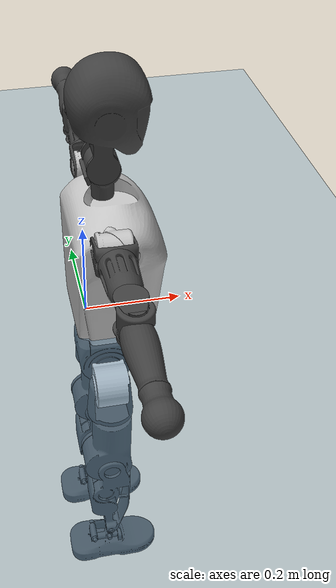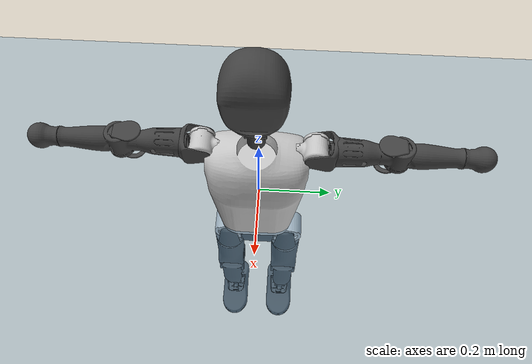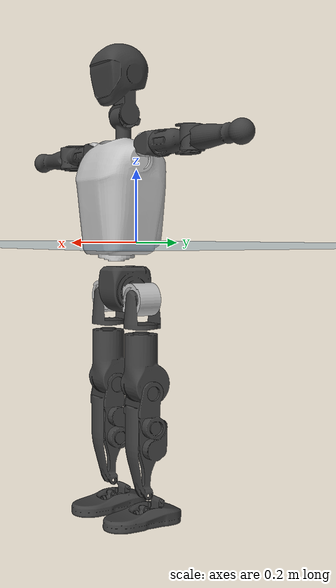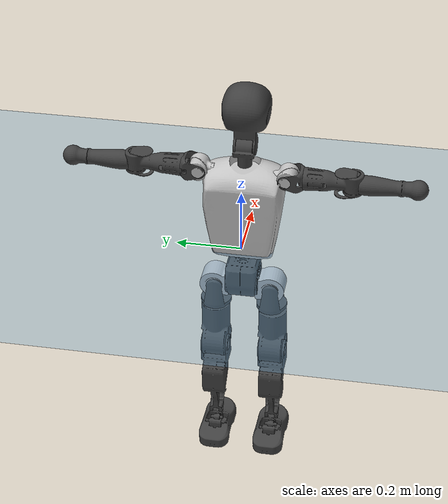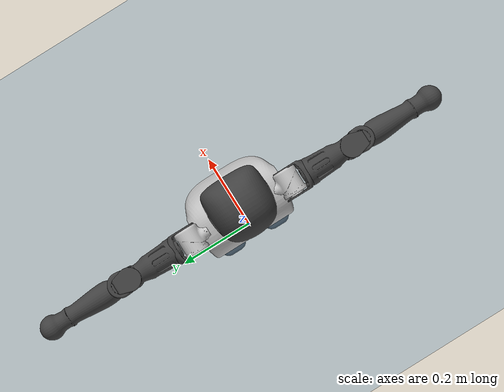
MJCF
<mujoco model="T1">
  <compiler angle="radian" assetdir="assets" balanceinertia="true" inertiafromgeom="false"/>

  <option timestep="0.005" density="1.2" viscosity="2e-05"/>

  <size nkey="1"/>

  <visual>
    <quality shadowsize="8192"/>
    <map shadowclip="0.5"/>
  </visual>

  <default>
    <default class="/">
      <joint armature="0.01" damping="0.01" frictionloss="0.1"/>
      <geom contype="0" conaffinity="0" group="1" solref="-1000 -80"/>
      <site size="0.01 0.005 0.005" group="5"/>
      <general forcelimited="true" biastype="affine" gainprm="25" biasprm="0 -25 -0.6"/>
      <default class="t1">
        <geom rgba="0.25 0.25 0.25 1"/>
        <default class="visual">
          <geom type="mesh" group="2"/>
        </default>
        <default class="collision">
          <geom group="3"/>
        </default>
        <default class="foot">
          <geom size="0.1115 0.05 0.015" type="box" condim="6" group="4" priority="1" solimp="0.015 1 0.015"/>
        </default>
        <default class="reward_collision_sphere">
          <geom group="5" rgba="1 0 0 1"/>
        </default>
      </default>
    </default>
  </default>

  <asset>
    <texture type="skybox" colorspace="auto" name="//unnamed_texture_0" builtin="gradient" rgb1="0.95 0.95 0.95" rgb2="0.95 0.95 0.95" width="100" height="600"/>
    <texture type="2d" colorspace="auto" name="texplane" builtin="checker" rgb1="0.345 0.575 0.748" rgb2="0.345 0.575 0.748" markrgb="1 1 1" width="512" height="512"/>
    <material name="MatPlane" class="/" texture="texplane" texuniform="true" texrepeat="2 2" specular="0.9"/>
    <mesh name="Trunk" class="/" file="Trunk.stl"/>
    <mesh name="H1" class="/" file="H1.stl"/>
    <mesh name="H2" class="/" file="H2.stl"/>
    <mesh name="AL1" class="/" file="AL1.stl"/>
    <mesh name="AL2" class="/" file="AL2.stl"/>
    <mesh name="AL3" class="/" file="AL3.stl"/>
    <mesh name="left_hand_link" class="/" file="left_hand_link.stl"/>
    <mesh name="AR1" class="/" file="AR1.stl"/>
    <mesh name="AR2" class="/" file="AR2.stl"/>
    <mesh name="AR3" class="/" file="AR3.stl"/>
    <mesh name="right_hand_link" class="/" file="right_hand_link.stl"/>
    <mesh name="Waist" class="/" file="Waist.stl"/>
    <mesh name="Hip_Pitch_Left" class="/" file="Hip_Pitch_Left.stl"/>
    <mesh name="Hip_Roll_Left" class="/" file="Hip_Roll_Left.stl"/>
    <mesh name="Hip_Yaw_Left" class="/" file="Hip_Yaw_Left.stl"/>
    <mesh name="Shank_Left" class="/" file="Shank_Left.stl"/>
    <mesh name="Ankle_Cross_Left" class="/" file="Ankle_Cross_Left.stl"/>
    <mesh name="left_foot_link" class="/" file="left_foot_link.stl"/>
    <mesh name="Hip_Pitch_Right" class="/" file="Hip_Pitch_Right.stl"/>
    <mesh name="Hip_Roll_Right" class="/" file="Hip_Roll_Right.stl"/>
    <mesh name="Hip_Yaw_Right" class="/" file="Hip_Yaw_Right.stl"/>
    <mesh name="Shank_Right" class="/" file="Shank_Right.stl"/>
    <mesh name="Ankle_Cross_Right" class="/" file="Ankle_Cross_Right.stl"/>
    <mesh name="right_foot_link" class="/" file="right_foot_link.stl"/>
  </asset>

  <worldbody>
    <geom name="floor" class="/" size="100 100 0.125" type="plane" group="0" material="MatPlane"/>
    <light name="toplight_shadow" class="/" pos="0 0 5" dir="0.0990148 0.0990148 -0.990148" type="directional" ambient="0.04 0.04 0.04" diffuse="0.55 0.55 0.55" specular="0.12 0.12 0.12"/>
    <light name="toplight_fill" class="/" pos="0 0 5" dir="0.0990148 0.0990148 -0.990148" type="directional" castshadow="false" ambient="0.04 0.04 0.04" diffuse="0.3 0.3 0.3" specular="0.08 0.08 0.08"/>
    <body name="trunk" childclass="t1" pos="-0.000198374 -0.00135858 0.00136248" quat="0.999999 -0.00125738 0.00040664 -0.000240248">
      <inertial pos="0.0329418 -0.00123646 0.123037" quat="0.999943 0.000400571 -0.010588 0.000921105" mass="7.52175" diaginertia="0.00987462 0.0284323 0.11479"/>
      <joint name="//unnamed_joint_0" type="free" armature="0" damping="0" frictionloss="0"/>
      <geom name="//unnamed_geom_1" class="visual" rgba="0.76 0.76 0.76 1" mesh="Trunk"/>
      <geom name="//unnamed_geom_2" class="collision" size="0.0651557 0.0868743 0.130311" pos="0.0382464 0 0.137535" type="box"/>
      <geom name="//unnamed_geom_3" class="reward_collision_sphere" size="0.0999054" pos="0.0382464 0 0.114612"/>
      <geom name="//unnamed_geom_4" class="reward_collision_sphere" size="0.0130311" pos="0.0382464 0.0699264 0"/>
      <geom name="//unnamed_geom_5" class="reward_collision_sphere" size="0.0130311" pos="0.0382464 -0.0699264 0"/>
      <geom name="//unnamed_geom_6" class="reward_collision_sphere" size="0.0130311" pos="0.0382464 0.088025 0.206302"/>
      <geom name="//unnamed_geom_7" class="reward_collision_sphere" size="0.0130311" pos="0.0382464 -0.088025 0.206302"/>
      <site name="imu" pos="0.00845997 -0.0101281 0.00750405" size="0.00868743"/>
      <camera name="track" pos="0 -1.64533 0" quat="0.707107 0.707107 0 0" mode="trackcom"/>
      <camera name="ego_camera" pos="0.0777677 0 0.481372" quat="-0.5 -0.5 0.5 0.5"/>
      <body name="H1" pos="0.0390239 -0.00243379 0.275726" quat="1 0.000395442 0.000538503 3.37748e-05">
        <inertial pos="-0.00112643 -0.0009073 0.0684547" quat="0.76818 -0.015277 -0.00184086 0.640049" mass="0.280105" diaginertia="2.51021e-05 8.64796e-05 0.000296"/>
        <joint name="AAHead_yaw" pos="0 0 0" axis="-0.00804004 -0.00466168 0.999957" range="-1.53654 1.58921" armature="0.00788014" damping="0.0102235" frictionloss="0.0830202"/>
        <geom name="//unnamed_geom_8" class="visual" mesh="H1"/>
        <body name="H2" pos="-0.00322437 -0.00191733 0.0715971" quat="0.999999 0.000666878 -0.000220967 -0.000910918">
          <inertial pos="0.00559862 0.00162414 0.113111" quat="0.98854 0.0993 -0.0804483 -0.0803469" mass="0.398075" diaginertia="0.000210723 0.000723367 0.00347321"/>
          <joint name="Head_pitch" pos="0 0 0" axis="-0.00541776 -0.999984 0.00137934" stiffness="0.001546" range="-1.26064 0.312985" armature="0.00999086" damping="0" frictionloss="0.0817999"/>
          <geom name="//unnamed_geom_9" class="visual" mesh="H2"/>
          <geom name="//unnamed_geom_10" class="collision" size="0.0694994" pos="0.0063744 0 0.126074"/>
          <geom name="//unnamed_geom_11" class="reward_collision_sphere" size="0.0781868" pos="0.0127488 0 0.114612"/>
        </body>
      </body>
      <body name="AL1" pos="0.0407868 0.0892332 0.253988" quat="1 0.000144886 0.000240222 -0.000260266">
        <inertial pos="-0.000322777 0.0369324 0.000280387" quat="0.507874 0.495694 -0.507298 0.488877" mass="0.346831" diaginertia="0.000146583 0.000469402 0.000557735"/>
        <joint name="Left_Shoulder_Pitch" pos="0 0 0" axis="0.000684563 0.99999 -0.00432213" range="-3.25337 1.20702" armature="0.00761478" damping="0.00568316" frictionloss="0.0796797"/>
        <geom name="//unnamed_geom_12" class="visual" rgba="0.76 0.76 0.76 1" mesh="AL1"/>
        <body name="AL2" pos="-0.000584901 0.0419975 0.000362479" quat="1 -1.04789e-07 -1.53668e-07 2.11996e-07">
          <inertial pos="0.00341058 0.028776 -0.000729927" quat="0.488755 0.510807 -0.487449 0.512434" mass="0.105861" diaginertia="4.32015e-05 0.000133864 0.000365021"/>
          <joint name="Left_Shoulder_Roll" pos="0 0 0" axis="-0.999964 0.00772703 -0.00362261" stiffness="0.00486347" range="-1.60171 1.71106" armature="0.00935072" damping="0" frictionloss="0.0887792"/>
          <geom name="//unnamed_geom_13" class="visual" mesh="AL2"/>
          <body name="AL3" pos="0.00158775 0.0492318 0.00106091" quat="1 5.29048e-05 0.000474994 0.000311164">
            <inertial pos="0.00122683 0.0700833 -0.00062903" quat="0.699099 0.715 -0.00201462 0.00551105" mass="0.635122" diaginertia="0.00129159 0.00474989 0.0012219"/>
            <joint name="Left_Elbow_Pitch" pos="0 0 0" axis="0.0129696 -0.999916 -0.000170477" stiffness="0.0155651" range="-2.30595 2.27471" armature="0.00994034" damping="0.0305775" frictionloss="0.0823803"/>
            <geom name="//unnamed_geom_14" class="visual" mesh="AL3"/>
            <geom name="//unnamed_geom_15" class="collision" size="0.0260623 0.0651557" pos="0 0.0411332 0" quat="0.707105 0.707108 0 0" type="cylinder"/>
            <geom name="//unnamed_geom_16" class="reward_collision_sphere" size="0.0312747"/>
            <body name="left_hand_link" pos="-0.000406734 0.121848 -0.00128369" quat="0.999999 -0.00121007 0.000205684 -0.000149906">
              <inertial pos="-0.000202303 0.0919473 0.00273885" quat="0.707533 0.706679 -0.000929448 -0.000786971" mass="0.218248" diaginertia="0.000859493 0.00308925 0.000439341"/>
              <joint name="Left_Elbow_Yaw" pos="0 0 0" axis="0.00546643 -0.00267842 0.999981" range="-2.49138 0.00276466" armature="0.00795387" damping="0.0116695" frictionloss="0.0784001"/>
              <geom name="//unnamed_geom_17" class="visual" mesh="left_hand_link"/>
              <geom name="//unnamed_geom_18" class="collision" size="0.0260623 0.076015" pos="0 0.106946 0" quat="0.707105 0.707108 0 0" type="cylinder"/>
              <geom name="//unnamed_geom_19" class="reward_collision_sphere" size="0.0434371"/>
              <geom name="//unnamed_geom_20" class="reward_collision_sphere" size="0.030406" pos="0 0.090493 0"/>
              <geom name="//unnamed_geom_21" class="reward_collision_sphere" size="0.030406" pos="0 0.176873 0"/>
            </body>
          </body>
        </body>
      </body>
      <body name="AR1" pos="0.0365848 -0.084668 0.249576" quat="1 -0.000484207 0.000536764 -1.26132e-05">
        <inertial pos="0.000782761 -0.0345091 0.000952509" quat="0.494673 0.500146 -0.511875 0.493089" mass="0.355056" diaginertia="0.000138758 0.000470251 0.000562628"/>
        <joint name="Right_Shoulder_Pitch" pos="0 0 0" axis="-0.000576654 -1 -0.000215708" range="-1.23089 3.31294" armature="0.00822224" damping="0.00735659" frictionloss="0.0821127"/>
        <geom name="//unnamed_geom_22" class="visual" rgba="0.76 0.76 0.76 1" mesh="AR1"/>
        <body name="AR2" pos="-0.00279351 -0.0406262 -0.00122026" quat="0.999999 0.00113962 -0.000290087 -0.000358206">
          <inertial pos="0.00519319 -0.029911 0.00257131" quat="0.51214 0.487365 -0.513125 0.486714" mass="0.104589" diaginertia="4.23731e-05 0.000128937 0.000358311"/>
          <joint name="Right_Shoulder_Roll" pos="0 0 0" axis="-0.999862 0.0117332 0.0117217" range="-1.69483 1.52968" armature="0.00841937" damping="0.0137915" frictionloss="0.0939906"/>
          <geom name="//unnamed_geom_23" class="visual" mesh="AR2"/>
          <body name="AR3" pos="-0.00118978 -0.0522035 0.00179521" quat="1 0.000146469 -0.000140162 9.29893e-05">
            <inertial pos="1.6471e-06 -0.0687765 0.000201145" quat="0.705582 0.708621 -0.00305007 0.000718425" mass="0.683223" diaginertia="0.00138299 0.0047315 0.00122518"/>
            <joint name="Right_Elbow_Pitch" pos="0 0 0" axis="0.000507093 0.999915 -0.013009" stiffness="0.00987575" range="-2.23487 2.25256" armature="0.0084743" damping="0.0088805" frictionloss="0.0878202"/>
            <geom name="//unnamed_geom_24" class="visual" mesh="AR3"/>
            <geom name="//unnamed_geom_25" class="collision" size="0.0260623 0.0651557" pos="0 -0.0411332 0" quat="0.707105 0.707108 0 0" type="cylinder"/>
            <geom name="//unnamed_geom_26" class="reward_collision_sphere" size="0.0312747"/>
            <body name="right_hand_link" pos="-0.00208064 -0.11996 -0.00244734" quat="0.999999 0.000484446 0.0010497 -0.000510467">
              <inertial pos="-0.00124017 -0.0921049 0.000279707" quat="0.706491 0.707715 -0.0013381 0.00293847" mass="0.209721" diaginertia="0.000894928 0.00310783 0.000424157"/>
              <joint name="Right_Elbow_Yaw" pos="0 0 0" axis="0.00934537 -0.000890958 0.999956" range="0.0290768 2.42028" armature="0.00926218" damping="0" frictionloss="0.0926512"/>
              <geom name="//unnamed_geom_27" class="visual" mesh="right_hand_link"/>
              <geom name="//unnamed_geom_28" class="collision" size="0.0260623 0.076015" pos="0 -0.106946 0" quat="0.707105 0.707108 0 0" type="cylinder"/>
              <geom name="//unnamed_geom_29" class="reward_collision_sphere" size="0.0434371"/>
              <geom name="//unnamed_geom_30" class="reward_collision_sphere" size="0.030406" pos="0 -0.090493 0"/>
              <geom name="//unnamed_geom_31" class="reward_collision_sphere" size="0.030406" pos="0 -0.176873 0"/>
            </body>
          </body>
        </body>
      </body>
      <body name="Waist" pos="0.0372458 0.00273741 -0.133254" quat="0.999999 -0.000733974 0.00127428 0.000307172">
        <inertial pos="0.00461012 0.000624622 0.00833912" quat="0.984203 0.00268453 -0.177006 0.00233143" mass="1.58192" diaginertia="0.000562275 0.00186963 0.00933216"/>
        <joint name="Waist" pos="0 0 0" axis="0.00705626 -0.00839551 0.99994" range="-1.51611 1.51803" armature="0.00763968" damping="0" frictionloss="0.0909301"/>
        <geom name="//unnamed_geom_32" class="visual" mesh="Waist"/>
        <body name="Hip_Pitch_Left" pos="0.00208705 0.0880632 0.00109176" quat="0.999999 0.000795633 0.00117993 0.000696787">
          <inertial pos="-0.00018231 -0.0078579 -0.0203371" quat="0.975383 0.219881 0.0165616 0.00261896" mass="0.707744" diaginertia="0.000193993 0.000546868 0.00248543"/>
          <joint name="Left_Hip_Pitch" pos="0 0 0" axis="0.00791465 0.99992 -0.00986436" stiffness="0.00797698" range="-1.85508 1.56267" armature="0.0084429" damping="0.00846196" frictionloss="0.0775854"/>
          <geom name="//unnamed_geom_33" class="visual" rgba="0.76 0.76 0.76 1" mesh="Hip_Pitch_Left"/>
          <body name="Hip_Roll_Left" pos="-0.00205948 -0.0024799 -0.0200076" quat="0.999998 0.000145657 -0.00165859 -0.000806008">
            <inertial pos="0.00216133 -0.00265259 -0.0600343" quat="0.70802 -0.00241304 -0.00505 0.70617" mass="0.255476" diaginertia="0.000184722 0.000592597 0.0010627"/>
            <joint name="Left_Hip_Roll" pos="0 0 0" axis="-0.999896 -0.00878697 0.0114264" stiffness="0.00345973" range="-1.57512 0.188719" armature="0.00912821" damping="0.0097449" frictionloss="0.0873981"/>
            <geom name="//unnamed_geom_34" class="visual" mesh="Hip_Roll_Left"/>
            <geom name="//unnamed_geom_35" class="reward_collision_sphere" size="0.0477808"/>
            <body name="Hip_Yaw_Left" pos="0.00291773 0.00277474 -0.0922589" quat="1 6.24244e-05 8.66805e-05 -0.000367555">
              <inertial pos="-0.00375185 -0.00333838 -0.103685" quat="0.703386 -0.0265545 -0.0370935 0.709343" mass="1.38027" diaginertia="0.00261951 0.00922269 0.00508139"/>
              <joint name="Left_Hip_Yaw" pos="0 0 0" axis="-0.010596 0.00495318 -0.999932" stiffness="0.00658103" range="-0.999344 1.01959" armature="0.00862174" damping="0" frictionloss="0.0930197"/>
              <geom name="//unnamed_geom_36" class="visual" mesh="Hip_Yaw_Left"/>
              <geom name="//unnamed_geom_37" class="collision" size="0.0434371 0.0694994" type="cylinder"/>
              <body name="Shank_Left" pos="-0.0115558 0.00126583 -0.155824" quat="1 5.07566e-05 -0.000225707 -2.00671e-06">
                <inertial pos="-0.00461513 -0.00126682 -0.139899" quat="0.997311 -0.00141857 -0.0235558 0.0693776" mass="1.07344" diaginertia="0.00354537 0.0129716 0.00357804"/>
                <joint name="Left_Knee_Pitch" pos="0 0 0" axis="0.00756476 0.999857 0.0151238" range="0.0201463 2.34746" armature="0.00900139" damping="0" frictionloss="0.0857143"/>
                <geom name="//unnamed_geom_38" class="visual" mesh="Shank_Left"/>
                <geom name="//unnamed_geom_39" class="collision" size="0.0434371 0.0651557" pos="0 0 -0.137535" type="cylinder"/>
                <geom name="//unnamed_geom_40" class="reward_collision_sphere" size="0.0564683"/>
                <body name="Ankle_Cross_Left" pos="0.00170829 -0.000913628 -0.321016" quat="0.999999 0.000929246 -0.000736332 -0.000597508">
                  <inertial pos="-0.0033149 -0.000237919 -0.00650306" quat="0.442976 0.548519 0.552346 0.444762" mass="0.0482538" diaginertia="3.16362e-06 9.94237e-06 2.30124e-05"/>
                  <joint name="Left_Ankle_Pitch" pos="0 0 0" axis="0.00536606 0.999981 0.00302301" range="-0.829461 0.313403" armature="0.00942382" damping="0.0236467" frictionloss="0.0946857"/>
                  <geom name="//unnamed_geom_41" class="visual" mesh="Ankle_Cross_Left"/>
                  <body name="left_foot_link" pos="-0.00216802 -0.00257285 -0.0129333" quat="1 0.000841733 -2.58705e-05 -0.000525367">
                    <inertial pos="-0.00281444 0.00282087 -0.00995101" quat="-0.001146 0.620867 0.00152999 0.783913" mass="0.42543" diaginertia="0.000262886 0.000852725 0.00398415"/>
                    <joint name="Left_Ankle_Roll" pos="0 0 0" axis="-0.999999 0.00155182 -0.000200903" range="-0.453267 0.395351" armature="0.00860839" damping="0.00831581" frictionloss="0.0715409"/>
                    <geom name="//unnamed_geom_42" class="visual" mesh="left_foot_link"/>
                    <geom name="left_foot" class="foot" size="0.104191 0.0478195 0.0112535" pos="0.0063744 0 -0.0171919"/>
                    <geom name="//unnamed_geom_44" class="reward_collision_sphere" size="0.0451746" pos="0.0063744 0 -0.0171919"/>
                    <geom name="//unnamed_geom_45" class="reward_collision_sphere" size="0.0260623" pos="0.0605568 -0.0189213 -0.0171919"/>
                    <geom name="//unnamed_geom_46" class="reward_collision_sphere" size="0.0260623" pos="-0.0446208 -0.0189213 -0.0171919"/>
                    <site name="left_foot" class="foot" pos="0.0063744 0 -0.0171919" size="0.00868743"/>
                  </body>
                </body>
              </body>
            </body>
          </body>
        </body>
        <body name="Hip_Pitch_Right" pos="-0.00137542 -0.0880159 0.000359538" quat="1 -2.52484e-05 -7.15859e-06 -2.31973e-05">
          <inertial pos="-0.00247625 0.00640618 -0.0228755" quat="0.974685 -0.222224 0.0243233 -0.00387377" mass="0.668958" diaginertia="0.000196517 0.000585646 0.00246721"/>
          <joint name="Right_Hip_Pitch" pos="0 0 0" axis="0.00172482 -0.999993 -0.00343399" range="-1.57241 1.75793" armature="0.00969721" damping="0.00724019" frictionloss="0.0830624"/>
          <geom name="//unnamed_geom_47" class="visual" rgba="0.76 0.76 0.76 1" mesh="Hip_Pitch_Right"/>
          <body name="Hip_Roll_Right" pos="0.000335803 -0.00177709 -0.021262" quat="0.999999 0.000257812 -0.00100087 -0.00041131">
            <inertial pos="-0.000425075 0.00158518 -0.0613168" quat="0.705485 -0.00866491 -0.00673064 0.70864" mass="0.258943" diaginertia="0.000187931 0.000587858 0.0010562"/>
            <joint name="Right_Hip_Roll" pos="0 0 0" axis="-0.999838 0.00637611 0.0168434" stiffness="0.027563" range="-0.240956 1.58101" armature="0.00773321" damping="0.00708605" frictionloss="0.0835231"/>
            <geom name="//unnamed_geom_48" class="visual" mesh="Hip_Roll_Right"/>
            <geom name="//unnamed_geom_49" class="reward_collision_sphere" size="0.0477808"/>
            <body name="Hip_Yaw_Right" pos="0.00020436 -0.00324965 -0.0946431" quat="1 -0.000262203 0.000203868 2.12258e-05">
              <inertial pos="-0.00517441 -0.000930986 -0.0998269" quat="0.714416 -0.0316354 -0.0329158 0.69823" mass="1.45593" diaginertia="0.00276314 0.00992635 0.00533739"/>
              <joint name="Right_Hip_Yaw" pos="0 0 0" axis="0.0139497 -0.00426295 -0.999894" range="-1.01554 0.964667" armature="0.00899022" damping="0" frictionloss="0.084875"/>
              <geom name="//unnamed_geom_50" class="visual" mesh="Hip_Yaw_Right"/>
              <geom name="//unnamed_geom_51" class="collision" size="0.0434371 0.0694994" type="cylinder"/>
              <body name="Shank_Right" pos="-0.00726263 0.000118345 -0.152355" quat="1 -0.000658934 8.77284e-06 -0.00024206">
                <inertial pos="-0.00703986 0.00247968 -0.143133" quat="0.99924 -0.000771415 -0.0235028 -0.0310798" mass="1.15849" diaginertia="0.00369487 0.013098 0.0038734"/>
                <joint name="Right_Knee_Pitch" pos="0 0 0" axis="-0.00030536 -1 0.000121317" range="-2.32751 0.0338738" armature="0.00933715" damping="0.00146212" frictionloss="0.0886724"/>
                <geom name="//unnamed_geom_52" class="visual" mesh="Shank_Right"/>
                <geom name="//unnamed_geom_53" class="collision" size="0.0434371 0.0651557" pos="0 0 -0.137535" type="cylinder"/>
                <geom name="//unnamed_geom_54" class="reward_collision_sphere" size="0.0564683"/>
                <body name="Ankle_Cross_Right" pos="-0.00276363 0.00199393 -0.322036" quat="1 0.000552947 0.000394848 0.000480611">
                  <inertial pos="-0.00465305 5.56281e-06 -0.0106499" quat="0.446074 0.551171 0.548511 0.44313" mass="0.0480604" diaginertia="3.12463e-06 9.82809e-06 2.19259e-05"/>
                  <joint name="Right_Ankle_Pitch" pos="0 0 0" axis="-0.00129117 -0.999916 0.0129329" stiffness="0.00811448" range="-0.397606 0.824875" armature="0.00859349" damping="0.0105002" frictionloss="0.0866662"/>
                  <geom name="//unnamed_geom_55" class="visual" mesh="Ankle_Cross_Right"/>
                  <body name="right_foot_link" pos="0.000925102 -0.000505958 -0.0150841" quat="1 -6.59434e-05 -0.000119272 5.05855e-05">
                    <inertial pos="-0.000565749 -0.00168449 -0.0108734" quat="0.00154112 0.615597 -0.0115582 0.787975" mass="0.447757" diaginertia="0.000290323 0.000884429 0.00418048"/>
                    <joint name="Right_Ankle_Roll" pos="0 0 0" axis="-0.999998 -0.00188142 0.000177144" stiffness="0.00161382" range="-0.400885 0.393008" armature="0.00974468" damping="0.0139183" frictionloss="0.0971474"/>
                    <geom name="//unnamed_geom_56" class="visual" mesh="right_foot_link"/>
                    <geom name="right_foot" class="foot" size="0.0867604 0.0455231 0.0125486" pos="0.0063744 0 -0.0171919"/>
                    <geom name="//unnamed_geom_58" class="reward_collision_sphere" size="0.0347497"/>
                    <geom name="//unnamed_geom_59" class="reward_collision_sphere" size="0.0260623" pos="0.0063744 0 -0.0171919"/>
                    <geom name="//unnamed_geom_60" class="reward_collision_sphere" size="0.0260623" pos="0.0605568 0.0189213 -0.0171919"/>
                    <geom name="//unnamed_geom_61" class="reward_collision_sphere" size="0.0260623" pos="-0.0446208 0.0189213 -0.0171919"/>
                    <site name="right_foot" class="foot" pos="0.0063744 0 -0.0171919" size="0.00868743"/>
                  </body>
                </body>
              </body>
            </body>
          </body>
        </body>
      </body>
    </body>
  </worldbody>

  <contact>
    <pair class="/" geom1="floor" geom2="left_foot" name="//unnamed_contact_0"/>
    <pair class="/" geom1="floor" geom2="right_foot" name="//unnamed_contact_1"/>
  </contact>

  <actuator>
    <general name="AAHead_yaw" class="/" joint="AAHead_yaw" forcerange="-5.48017 5.48017" gainprm="22.712" biasprm="0 -22.712 -0.504842"/>
    <general name="Head_pitch" class="/" joint="Head_pitch" forcerange="-6.6446 6.6446" gainprm="22.712" biasprm="0 -22.712 -0.504842"/>
    <general name="Left_Shoulder_Pitch" class="/" joint="Left_Shoulder_Pitch" forcerange="-16.2079 16.2079" gainprm="22.712" biasprm="0 -22.712 -0.504842"/>
    <general name="Left_Shoulder_Roll" class="/" joint="Left_Shoulder_Roll" forcerange="-14.3596 14.3596" gainprm="22.712" biasprm="0 -22.712 -0.504842"/>
    <general name="Left_Elbow_Pitch" class="/" joint="Left_Elbow_Pitch" forcerange="-16.9265 16.9265" gainprm="22.712" biasprm="0 -22.712 -0.504842"/>
    <general name="Left_Elbow_Yaw" class="/" joint="Left_Elbow_Yaw" forcerange="-15.1683 15.1683" gainprm="22.712" biasprm="0 -22.712 -0.504842"/>
    <general name="Right_Shoulder_Pitch" class="/" joint="Right_Shoulder_Pitch" forcerange="-14.9288 14.9288" gainprm="22.712" biasprm="0 -22.712 -0.504842"/>
    <general name="Right_Shoulder_Roll" class="/" joint="Right_Shoulder_Roll" forcerange="-14.0935 14.0935" gainprm="22.712" biasprm="0 -22.712 -0.504842"/>
    <general name="Right_Elbow_Pitch" class="/" joint="Right_Elbow_Pitch" forcerange="-15.5553 15.5553" gainprm="22.712" biasprm="0 -22.712 -0.504842"/>
    <general name="Right_Elbow_Yaw" class="/" joint="Right_Elbow_Yaw" forcerange="-15.3288 15.3288" gainprm="22.712" biasprm="0 -22.712 -0.504842"/>
    <general name="Waist" class="/" joint="Waist" forcerange="-26.3219 26.3219" gainprm="22.712" biasprm="0 -22.712 -0.504842"/>
    <general name="Left_Hip_Pitch" class="/" joint="Left_Hip_Pitch" forcerange="-35.1798 35.1798" gainprm="22.712" biasprm="0 -22.712 -0.504842"/>
    <general name="Left_Hip_Roll" class="/" joint="Left_Hip_Roll" forcerange="-24.836 24.836" gainprm="22.712" biasprm="0 -22.712 -0.504842"/>
    <general name="Left_Hip_Yaw" class="/" joint="Left_Hip_Yaw" forcerange="-28.2752 28.2752" gainprm="22.712" biasprm="0 -22.712 -0.504842"/>
    <general name="Left_Knee_Pitch" class="/" joint="Left_Knee_Pitch" forcerange="-56.3256 56.3256" gainprm="22.712" biasprm="0 -22.712 -0.504842"/>
    <general name="Left_Ankle_Pitch" class="/" joint="Left_Ankle_Pitch" forcerange="-16.7737 16.7737" gainprm="22.712" biasprm="0 -22.712 -0.504842"/>
    <general name="Left_Ankle_Roll" class="/" joint="Left_Ankle_Roll" forcerange="-13.0276 13.0276" gainprm="22.712" biasprm="0 -22.712 -0.504842"/>
    <general name="Right_Hip_Pitch" class="/" joint="Right_Hip_Pitch" forcerange="-43.0018 43.0018" gainprm="22.712" biasprm="0 -22.712 -0.504842"/>
    <general name="Right_Hip_Roll" class="/" joint="Right_Hip_Roll" forcerange="-26.8008 26.8008" gainprm="22.712" biasprm="0 -22.712 -0.504842"/>
    <general name="Right_Hip_Yaw" class="/" joint="Right_Hip_Yaw" forcerange="-28.2475 28.2475" gainprm="22.712" biasprm="0 -22.712 -0.504842"/>
    <general name="Right_Knee_Pitch" class="/" joint="Right_Knee_Pitch" forcerange="-51.3972 51.3972" gainprm="22.712" biasprm="0 -22.712 -0.504842"/>
    <general name="Right_Ankle_Pitch" class="/" joint="Right_Ankle_Pitch" forcerange="-17.6602 17.6602" gainprm="22.712" biasprm="0 -22.712 -0.504842"/>
    <general name="Right_Ankle_Roll" class="/" joint="Right_Ankle_Roll" forcerange="-12.9344 12.9344" gainprm="22.712" biasprm="0 -22.712 -0.504842"/>
  </actuator>

  <sensor>
    <gyro site="imu" name="imu_angular_velocity"/>
    <velocimeter site="imu" name="imu_linear_velocity"/>
    <framelinvel objtype="site" objname="left_foot" name="left_foot_global_linear_velocity"/>
    <framelinvel objtype="site" objname="right_foot" name="right_foot_global_linear_velocity"/>
  </sensor>

  <keyframe>
    <key name="home" qpos="0 0 0.6385 1 0 0 0 0 0 0 1.4 0 -0.4 0 -1.4 0 0.4 0 -0.4 0 0 0.8 -0.4 0 0.4 0 0 -0.8 0.4 0"/>
  </keyframe>
</mujoco>
